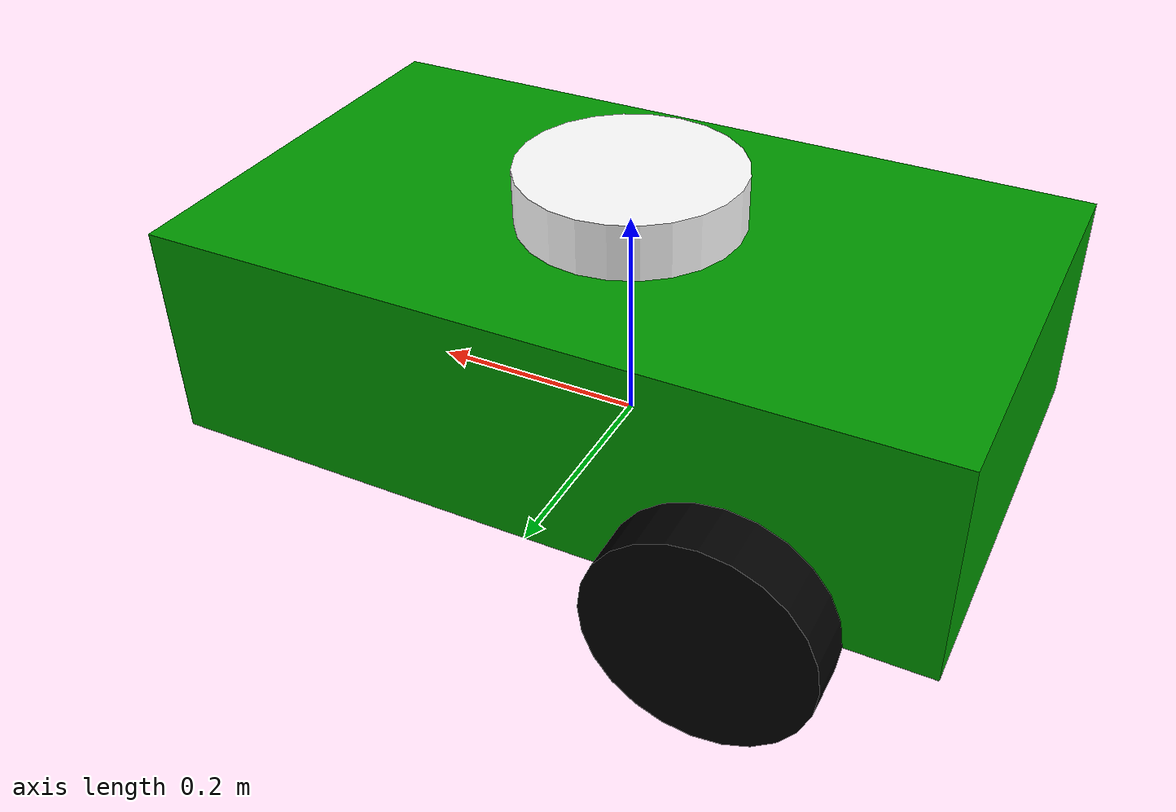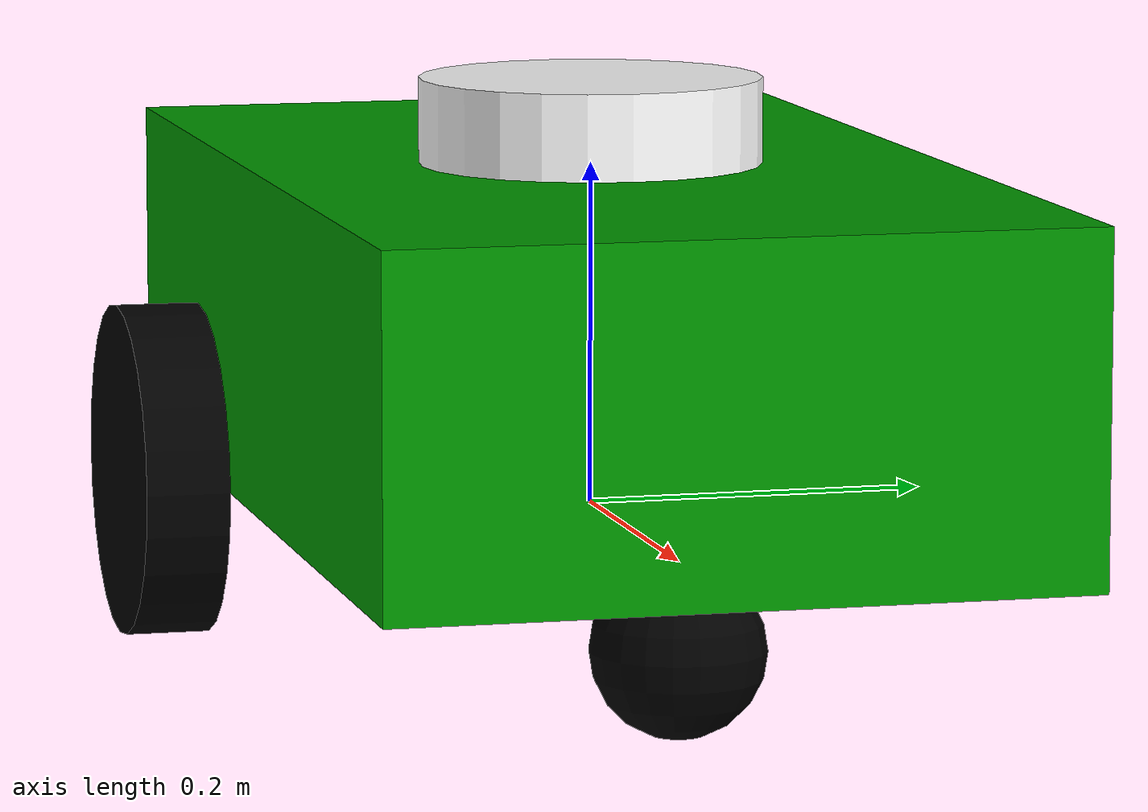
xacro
<?xml version="1.0"?>
<robot name="diff_robot" xmlns:xacro="http://www.ros.org/wiki/xacro">

<!-- Define namespace as a xacro argument with default value -->
<xacro:arg name="namespace" default=""/>
<!-- Set the namespace property using the argument -->
<xacro:property name="ns" value="$(arg namespace)" />

<!-- Materials -->
<material name="black">
    <color rgba="0 0 0 1.0"/>
</material>

<material name="grey">
    <color rgba="0.7 0.7 0.7 1.0"/>
</material>

<material name="green">
    <color rgba="0.0 0.6 0 1.0"/>
</material>

<material name="white">
    <color rgba="1 1 1 1.0"/>
</material>

<!-- Base footprint -->
<link name="base_footprint"/>

<!-- Base link -->
<link name="base_link">
    <inertial>
        <origin xyz="0.0 0.0 0.0" rpy="0.0 0.0 0.0"/>
        <mass value="0.5"/>
        <inertia ixx="0.001665" ixy="0.0" ixz="0.0" iyy="0.00441225" iyz="0.0" izz="0.00541625"/>
    </inertial>
    <visual>
        <geometry>
            <box size="0.7 0.4 0.2"/>
        </geometry>
        <origin xyz="0.0 0.0 0.1" rpy="0.0 0.0 0.0"/>
        <material name="green"/>
    </visual>
</link>

<!-- Left wheel -->
<link name="left_wheel">
    <inertial>
        <origin xyz="0.0 0.0 0.0" rpy="0.0 0.0 0.0"/>
        <mass value="0.3"/>
        <inertia ixx="0.00081252" ixy="0.0" ixz="0.0" iyy="0.00081252" iyz="0.0" izz="0.0015"/>
    </inertial>
    <visual>
        <geometry>
            <cylinder radius="0.1" length="0.05"/>
        </geometry>
        <origin xyz="0.0 0.0 0.0" rpy="1.57 0.0 0.0"/>
        <material name="black"/>
    </visual>
    <collision>
        <geometry>
            <cylinder radius="0.1" length="0.05"/>
        </geometry>
        <origin xyz="0.0 0.0 0.0" rpy="1.57 0.0 0.0"/>
    </collision>
</link>

<!-- Right wheel -->
<link name="right_wheel">
    <inertial>
        <origin xyz="0.0 0.0 0.0" rpy="0.0 0.0 0.0"/>
        <mass value="0.3"/>
        <inertia ixx="0.00081252" ixy="0.0" ixz="0.0" iyy="0.00081252" iyz="0.0" izz="0.0015"/>
    </inertial>
    <visual>
        <geometry>
            <cylinder radius="0.1" length="0.05"/>
        </geometry>
        <origin xyz="0.0 0.0 0.0" rpy="1.57 0.0 0.0"/>
        <material name="black"/>
    </visual>
    <collision>
        <geometry>
            <cylinder radius="0.1" length="0.05"/>
        </geometry>
        <origin xyz="0.0 0.0 0.0" rpy="1.57 0.0 0.0"/>
    </collision>
</link>

<!-- Caster wheel -->
<link name="caster_wheel">
    <inertial>
        <origin xyz="0.0 0.0 0.0" rpy="0.0 0.0 0.0"/>
        <mass value="0.1"/>
        <inertia ixx="0.00016666" ixy="0.0" ixz="0.0" iyy="0.00016666" iyz="0.0" izz="0.00016666"/>
    </inertial>
    <visual>
        <geometry>
            <sphere radius="0.05"/>
        </geometry>
        <origin xyz="0.0 0.0 0.0" rpy="0.0 0.0 0.0"/>
        <material name="black"/>
    </visual>
    <collision>
        <geometry>
            <sphere radius="0.05"/>
        </geometry>
        <origin xyz="0.0 0.0 0.0" rpy="0.0 0.0 0.0"/>
    </collision>
</link>

<!-- IMU link -->
<link name="imu_link">
    <visual>
      <origin rpy="0 0 0" xyz="0 0 0.0"/>
      <geometry>
        <box size="0.01 0.01 0.01"/>
      </geometry>
    </visual>
</link>

<!-- LIDAR link -->
<link name="lidar_link">
    <visual>
        <geometry>
            <cylinder radius="0.1" length="0.05"/>
        </geometry>
        <origin xyz="0.0 0.0 0.0" rpy="0.0 0.0 0.0"/>
        <material name="white"/>
    </visual>
    <collision>
        <geometry>
            <cylinder radius="0.05" length="0.05"/>
        </geometry>
        <origin xyz="0.0 0.0 0.0" rpy="0.0 0.0 0.0"/>
    </collision>
    <inertial>
        <mass value="0.114" />
        <origin xyz="0 0 0" />
        <inertia ixx="0.001" ixy="0.0" ixz="0.0"
                 iyy="0.001" iyz="0.0"
                 izz="0.001" />
    </inertial>
</link>

<!-- Joints -->
<joint name="imu_joint" type="fixed">
    <parent link="base_link"/>
    <child link="imu_link"/>
    <origin xyz="0.1 0.1 0.1" rpy="0.0 0.0 0.0"/>
</joint>

<joint name="base_joint" type="fixed">
    <parent link="base_link"/>
    <child link="base_footprint"/>
    <origin xyz="0.0 0.0 0.05" rpy="0.0 0.0 0.0"/>
</joint>

<joint name="base_lidar_joint" type="fixed">
    <parent link="base_link"/>
    <child link="lidar_link"/>
    <origin xyz="0.0 0.0 0.225" rpy="0.0 0.0 0.0"/>
</joint>

<joint name="left_wheel_joint" type="continuous">
    <parent link="base_link"/>
    <child link="left_wheel"/>
    <origin xyz="-0.175 0.225 0.0" rpy="0 0.0 0.0"/>
    <axis xyz="0.0 1.0 0.0"/>
    <dynamics damping="0.2" friction="1.0"/>
    <limit effort="100" velocity="50.0"/>
</joint>

<joint name="right_wheel_joint" type="continuous">
    <parent link="base_link"/>
    <child link="right_wheel"/>
    <origin xyz="-0.175 -0.225 0.0" rpy="0 0.0 0.0"/>
    <axis xyz="0.0 1.0 0.0"/>
    <dynamics damping="0.2" friction="1.0"/>
    <limit effort="100" velocity="50.0"/>
</joint>

<joint name="caster_wheel_joint" type="fixed">
    <parent link="base_link"/>
    <child link="caster_wheel"/>
    <dynamics damping="0.2" friction="0.1"/>
    <origin xyz="0.2 0.0 -0.05" rpy="0.0 0.0 0.0"/>
</joint>

<!-- Gazebo plugins for Harmonic -->
<!-- Differential Drive Plugin -->
<gazebo>
    <plugin filename="gz-sim-diff-drive-system" name="gz::sim::systems::DiffDrive">
        <left_joint>left_wheel_joint</left_joint>
        <right_joint>right_wheel_joint</right_joint>
        <wheel_separation>0.45</wheel_separation>
        <wheel_radius>0.1</wheel_radius>
        <odom_publish_frequency>0</odom_publish_frequency>
        <max_linear_acceleration>10.0</max_linear_acceleration>
        <min_linear_acceleration>-10.0</min_linear_acceleration>
        <max_linear_velocity>5.0</max_linear_velocity>
        <min_linear_velocity>-5.0</min_linear_velocity>
        <max_angular_velocity>5.0</max_angular_velocity>
        <min_angular_velocity>-5.0</min_angular_velocity>
        <frame_id>${ns}/odometry</frame_id>
        <child_frame_id>${ns}/base_link</child_frame_id>
        <!-- ROS2 Topic remapping -->
        <topic>${ns}/cmd_vel</topic>
        <odom_topic>${ns}/odometry</odom_topic>
        <tf_topic>${ns}/tf</tf_topic> <!--enable do /odom -->
    </plugin>
</gazebo>

<gazebo>
    <plugin filename="gz-sim-odometry-publisher-system"
            name="gz::sim::systems::OdometryPublisher">
        <odom_frame>${ns}/odom</odom_frame>
        <robot_base_frame>${ns}/base_link</robot_base_frame>
        <odom_publish_frequency>50</odom_publish_frequency>
        <odom_topic>${ns}/odom</odom_topic>
        <tf_topic>${ns}/odom</tf_topic>
    </plugin>
</gazebo>

<!-- IMU Sensor Plugin -->
<gazebo reference="imu_link">
    <sensor name="imu" type="imu">
        <always_on>true</always_on>
        <update_rate>5</update_rate>
        <plugin filename="gz-sim-imu-system" name="gz::sim::systems::Imu">
            <topic>${ns}/imu</topic>
            <enable_orientation>true</enable_orientation>
            <enable_angular_velocity>true</enable_angular_velocity>
            <enable_linear_acceleration>true</enable_linear_acceleration>
        </plugin>
    </sensor>
</gazebo>

<!-- LIDAR/Laser Sensor Plugin -->
<gazebo reference="lidar_link">
    <sensor name="laser" type="gpu_lidar">
    <pose> 0 0 0 0 0 0 </pose>
    <always_on>true</always_on>
    <visualize>true</visualize>
    <update_rate>10</update_rate>
    <topic>/${ns}/scan</topic>

    <gz_frame_id>lidar_link</gz_frame_id>
    <lidar>
        <scan>
        <horizontal>
            <samples>360</samples>
            <min_angle>-3.14</min_angle>
            <max_angle>3.14</max_angle>
        </horizontal>
        </scan>
        <range>
        <min>0.1</min>
        <max>12</max>
        </range>
    </lidar>
    </sensor>
</gazebo>

<!-- Joint State Publisher Plugin -->
<gazebo>
    <plugin filename="gz-sim-joint-state-publisher-system" name="gz::sim::systems::JointStatePublisher">
        <joint_name>left_wheel_joint</joint_name>
        <joint_name>right_wheel_joint</joint_name>
        <topic>${ns}/joint_states</topic>
    </plugin>
</gazebo>

<!-- Material colors for Gazebo visualization -->
<gazebo reference="base_link">
    <material>Gazebo/Green</material>
</gazebo>
<gazebo reference="right_wheel">
    <material>Gazebo/Black</material>
</gazebo>
<gazebo reference="left_wheel">
    <material>Gazebo/Black</material>
</gazebo>
<gazebo reference="caster_wheel">
    <material>Gazebo/Black</material>
</gazebo>

</robot>
